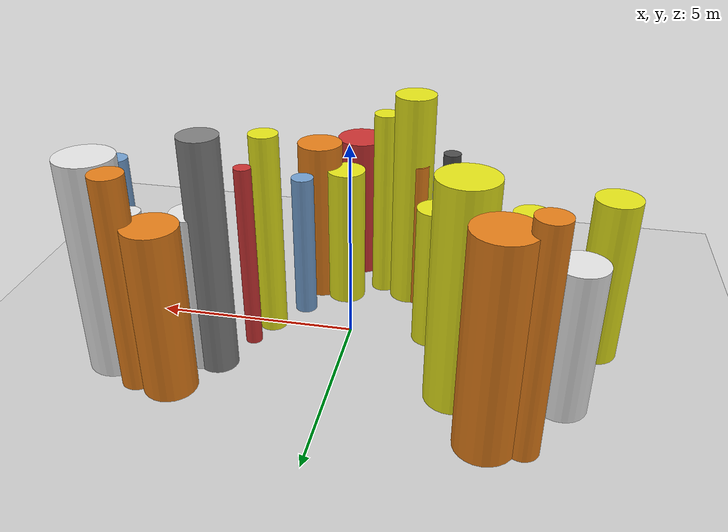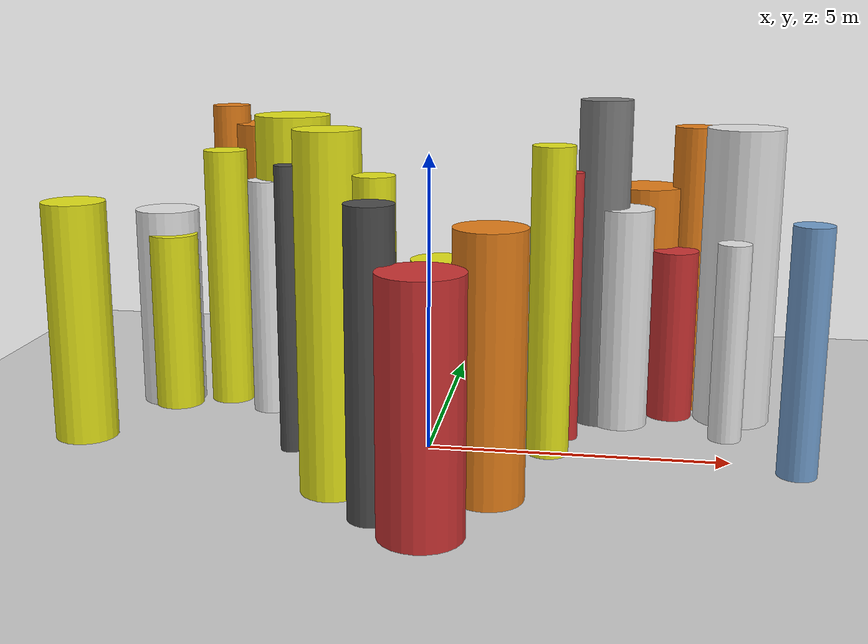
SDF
<?xml version='1.0'?>
<sdf version='1.6'>
  <world name='routeA_rl_v1__dense_recovery__rl_train__s_turn_multi_obstacle__000090'>
    <!-- Sun light -->
    <light name='sun' type='directional'>
      <cast_shadows>1</cast_shadows>
      <pose>0 0 10 0 0 0</pose>
      <diffuse>0.8 0.8 0.8 1</diffuse>
      <specular>0.2 0.2 0.2 1</specular>
      <attenuation>
        <range>1000</range>
        <constant>0.9</constant>
        <linear>0.01</linear>
        <quadratic>0.001</quadratic>
      </attenuation>
      <direction>-0.5 0.1 -0.9</direction>
    </light>

    <!-- Ground plane -->
    <model name='ground_plane'>
      <static>1</static>
      <link name='link'>
        <collision name='collision'>
          <geometry>
            <plane>
              <normal>0 0 1</normal>
              <size>100 100</size>
            </plane>
          </geometry>
          <surface>
            <contact>
              <collide_bitmask>65535</collide_bitmask>
              <ode/>
            </contact>
            <friction>
              <ode>
                <mu>100</mu>
                <mu2>50</mu2>
              </ode>
              <torsional><ode/></torsional>
            </friction>
            <bounce/>
          </surface>
          <max_contacts>10</max_contacts>
        </collision>
        <visual name='visual'>
          <cast_shadows>0</cast_shadows>
          <geometry>
            <plane>
              <normal>0 0 1</normal>
              <size>100 100</size>
            </plane>
          </geometry>
          <material>
            <script>
              <uri>file://media/materials/scripts/gazebo.material</uri>
              <n>Gazebo/Grey</n>
            </script>
          </material>
        </visual>
      </link>
    </model>

    <!-- Environment -->
    <magnetic_field>6e-06 2.3e-05 -4.2e-05</magnetic_field>
    <atmosphere type='adiabatic'/>
    <physics name='default_physics' default='0' type='ode'>
      <gravity>0 0 -9.8</gravity>
      <max_step_size>0.004</max_step_size>
      <real_time_factor>1</real_time_factor>
      <real_time_update_rate>250</real_time_update_rate>
    </physics>
    <scene>
      <ambient>0.4 0.4 0.4 1</ambient>
      <background>0.7 0.7 0.7 1</background>
      <shadows>1</shadows>
    </scene>
    <wind/>
    <spherical_coordinates>
      <surface_model>EARTH_WGS84</surface_model>
      <latitude_deg>0</latitude_deg>
      <longitude_deg>0</longitude_deg>
      <elevation>0</elevation>
      <heading_deg>0</heading_deg>
    </spherical_coordinates>

    <!-- ============ OBSTACLES (28) ============ -->
    <model name='s_turn_obs_0'>
      <static>1</static>
      <link name='link'>
        <visual name='visual'>
          <geometry>
            <cylinder>
              <radius>0.5389</radius>
              <length>4.1242</length>
            </cylinder>
          </geometry>
          <material>
            <script>
              <n>Gazebo/Yellow</n>
              <uri>file://media/materials/scripts/gazebo.material</uri>
            </script>
            <ambient>0.9 0.9 0.1 1</ambient>
          </material>
        </visual>
        <collision name='collision'>
          <geometry>
            <cylinder>
              <radius>0.5389</radius>
              <length>4.1242</length>
            </cylinder>
          </geometry>
          <max_contacts>10</max_contacts>
          <surface>
            <contact><ode/></contact>
            <bounce/>
            <friction>
              <ode><mu>1</mu><mu2>1</mu2></ode>
              <torsional><ode/></torsional>
            </friction>
          </surface>
        </collision>
      </link>
      <pose>-6.0000 -0.2772 2.0621 0 0 0.0000</pose>
    </model>

    <model name='s_turn_obs_1'>
      <static>1</static>
      <link name='link'>
        <visual name='visual'>
          <geometry>
            <cylinder>
              <radius>0.5803</radius>
              <length>3.6479</length>
            </cylinder>
          </geometry>
          <material>
            <script>
              <n>Gazebo/White</n>
              <uri>file://media/materials/scripts/gazebo.material</uri>
            </script>
            <ambient>0.9 0.9 0.9 1</ambient>
          </material>
        </visual>
        <collision name='collision'>
          <geometry>
            <cylinder>
              <radius>0.5803</radius>
              <length>3.6479</length>
            </cylinder>
          </geometry>
          <max_contacts>10</max_contacts>
          <surface>
            <contact><ode/></contact>
            <bounce/>
            <friction>
              <ode><mu>1</mu><mu2>1</mu2></ode>
              <torsional><ode/></torsional>
            </friction>
          </surface>
        </collision>
      </link>
      <pose>-5.2000 1.9835 1.8240 0 0 0.0000</pose>
    </model>

    <model name='s_turn_obs_2'>
      <static>1</static>
      <link name='link'>
        <visual name='visual'>
          <geometry>
            <cylinder>
              <radius>0.3598</radius>
              <length>5.4306</length>
            </cylinder>
          </geometry>
          <material>
            <script>
              <n>Gazebo/Orange</n>
              <uri>file://media/materials/scripts/gazebo.material</uri>
            </script>
            <ambient>0.9 0.5 0.1 1</ambient>
          </material>
        </visual>
        <collision name='collision'>
          <geometry>
            <cylinder>
              <radius>0.3598</radius>
              <length>5.4306</length>
            </cylinder>
          </geometry>
          <max_contacts>10</max_contacts>
          <surface>
            <contact><ode/></contact>
            <bounce/>
            <friction>
              <ode><mu>1</mu><mu2>1</mu2></ode>
              <torsional><ode/></torsional>
            </friction>
          </surface>
        </collision>
      </link>
      <pose>-4.4000 3.6009 2.7153 0 0 0.0000</pose>
    </model>

    <model name='s_turn_obs_3'>
      <static>1</static>
      <link name='link'>
        <visual name='visual'>
          <geometry>
            <cylinder>
              <radius>0.6853</radius>
              <length>5.0985</length>
            </cylinder>
          </geometry>
          <material>
            <script>
              <n>Gazebo/Orange</n>
              <uri>file://media/materials/scripts/gazebo.material</uri>
            </script>
            <ambient>0.9 0.5 0.1 1</ambient>
          </material>
        </visual>
        <collision name='collision'>
          <geometry>
            <cylinder>
              <radius>0.6853</radius>
              <length>5.0985</length>
            </cylinder>
          </geometry>
          <max_contacts>10</max_contacts>
          <surface>
            <contact><ode/></contact>
            <bounce/>
            <friction>
              <ode><mu>1</mu><mu2>1</mu2></ode>
              <torsional><ode/></torsional>
            </friction>
          </surface>
        </collision>
      </link>
      <pose>-3.6000 3.5733 2.5492 0 0 0.0000</pose>
    </model>

    <model name='s_turn_obs_4'>
      <static>1</static>
      <link name='link'>
        <visual name='visual'>
          <geometry>
            <cylinder>
              <radius>0.6810</radius>
              <length>5.3983</length>
            </cylinder>
          </geometry>
          <material>
            <script>
              <n>Gazebo/Yellow</n>
              <uri>file://media/materials/scripts/gazebo.material</uri>
            </script>
            <ambient>0.9 0.9 0.1 1</ambient>
          </material>
        </visual>
        <collision name='collision'>
          <geometry>
            <cylinder>
              <radius>0.6810</radius>
              <length>5.3983</length>
            </cylinder>
          </geometry>
          <max_contacts>10</max_contacts>
          <surface>
            <contact><ode/></contact>
            <bounce/>
            <friction>
              <ode><mu>1</mu><mu2>1</mu2></ode>
              <torsional><ode/></torsional>
            </friction>
          </surface>
        </collision>
      </link>
      <pose>-2.8000 2.1031 2.6991 0 0 0.0000</pose>
    </model>

    <model name='s_turn_obs_5'>
      <static>1</static>
      <link name='link'>
        <visual name='visual'>
          <geometry>
            <cylinder>
              <radius>0.4511</radius>
              <length>3.5819</length>
            </cylinder>
          </geometry>
          <material>
            <script>
              <n>Gazebo/Yellow</n>
              <uri>file://media/materials/scripts/gazebo.material</uri>
            </script>
            <ambient>0.9 0.9 0.1 1</ambient>
          </material>
        </visual>
        <collision name='collision'>
          <geometry>
            <cylinder>
              <radius>0.4511</radius>
              <length>3.5819</length>
            </cylinder>
          </geometry>
          <max_contacts>10</max_contacts>
          <surface>
            <contact><ode/></contact>
            <bounce/>
            <friction>
              <ode><mu>1</mu><mu2>1</mu2></ode>
              <torsional><ode/></torsional>
            </friction>
          </surface>
        </collision>
      </link>
      <pose>-2.0000 -0.1186 1.7909 0 0 0.0000</pose>
    </model>

    <model name='s_turn_obs_6'>
      <static>1</static>
      <link name='link'>
        <visual name='visual'>
          <geometry>
            <cylinder>
              <radius>0.5086</radius>
              <length>5.5882</length>
            </cylinder>
          </geometry>
          <material>
            <script>
              <n>Gazebo/Yellow</n>
              <uri>file://media/materials/scripts/gazebo.material</uri>
            </script>
            <ambient>0.9 0.9 0.1 1</ambient>
          </material>
        </visual>
        <collision name='collision'>
          <geometry>
            <cylinder>
              <radius>0.5086</radius>
              <length>5.5882</length>
            </cylinder>
          </geometry>
          <max_contacts>10</max_contacts>
          <surface>
            <contact><ode/></contact>
            <bounce/>
            <friction>
              <ode><mu>1</mu><mu2>1</mu2></ode>
              <torsional><ode/></torsional>
            </friction>
          </surface>
        </collision>
      </link>
      <pose>-1.2000 -2.0765 2.7941 0 0 0.0000</pose>
    </model>

    <model name='s_turn_obs_7'>
      <static>1</static>
      <link name='link'>
        <visual name='visual'>
          <geometry>
            <cylinder>
              <radius>0.3691</radius>
              <length>4.6695</length>
            </cylinder>
          </geometry>
          <material>
            <script>
              <n>Gazebo/DarkGrey</n>
              <uri>file://media/materials/scripts/gazebo.material</uri>
            </script>
            <ambient>0.3 0.3 0.3 1</ambient>
          </material>
        </visual>
        <collision name='collision'>
          <geometry>
            <cylinder>
              <radius>0.3691</radius>
              <length>4.6695</length>
            </cylinder>
          </geometry>
          <max_contacts>10</max_contacts>
          <surface>
            <contact><ode/></contact>
            <bounce/>
            <friction>
              <ode><mu>1</mu><mu2>1</mu2></ode>
              <torsional><ode/></torsional>
            </friction>
          </surface>
        </collision>
      </link>
      <pose>-0.4000 -3.0239 2.3347 0 0 0.0000</pose>
    </model>

    <model name='s_turn_obs_8'>
      <static>1</static>
      <link name='link'>
        <visual name='visual'>
          <geometry>
            <cylinder>
              <radius>0.6441</radius>
              <length>3.8398</length>
            </cylinder>
          </geometry>
          <material>
            <script>
              <n>Gazebo/Red</n>
              <uri>file://media/materials/scripts/gazebo.material</uri>
            </script>
            <ambient>0.8 0.2 0.2 1</ambient>
          </material>
        </visual>
        <collision name='collision'>
          <geometry>
            <cylinder>
              <radius>0.6441</radius>
              <length>3.8398</length>
            </cylinder>
          </geometry>
          <max_contacts>10</max_contacts>
          <surface>
            <contact><ode/></contact>
            <bounce/>
            <friction>
              <ode><mu>1</mu><mu2>1</mu2></ode>
              <torsional><ode/></torsional>
            </friction>
          </surface>
        </collision>
      </link>
      <pose>0.4000 -3.5137 1.9199 0 0 0.0000</pose>
    </model>

    <model name='s_turn_obs_9'>
      <static>1</static>
      <link name='link'>
        <visual name='visual'>
          <geometry>
            <cylinder>
              <radius>0.5702</radius>
              <length>4.1988</length>
            </cylinder>
          </geometry>
          <material>
            <script>
              <n>Gazebo/Orange</n>
              <uri>file://media/materials/scripts/gazebo.material</uri>
            </script>
            <ambient>0.9 0.5 0.1 1</ambient>
          </material>
        </visual>
        <collision name='collision'>
          <geometry>
            <cylinder>
              <radius>0.5702</radius>
              <length>4.1988</length>
            </cylinder>
          </geometry>
          <max_contacts>10</max_contacts>
          <surface>
            <contact><ode/></contact>
            <bounce/>
            <friction>
              <ode><mu>1</mu><mu2>1</mu2></ode>
              <torsional><ode/></torsional>
            </friction>
          </surface>
        </collision>
      </link>
      <pose>1.2000 -2.0121 2.0994 0 0 0.0000</pose>
    </model>

    <model name='s_turn_obs_10'>
      <static>1</static>
      <link name='link'>
        <visual name='visual'>
          <geometry>
            <cylinder>
              <radius>0.3525</radius>
              <length>5.1616</length>
            </cylinder>
          </geometry>
          <material>
            <script>
              <n>Gazebo/Yellow</n>
              <uri>file://media/materials/scripts/gazebo.material</uri>
            </script>
            <ambient>0.9 0.9 0.1 1</ambient>
          </material>
        </visual>
        <collision name='collision'>
          <geometry>
            <cylinder>
              <radius>0.3525</radius>
              <length>5.1616</length>
            </cylinder>
          </geometry>
          <max_contacts>10</max_contacts>
          <surface>
            <contact><ode/></contact>
            <bounce/>
            <friction>
              <ode><mu>1</mu><mu2>1</mu2></ode>
              <torsional><ode/></torsional>
            </friction>
          </surface>
        </collision>
      </link>
      <pose>2.0000 0.0744 2.5808 0 0 0.0000</pose>
    </model>

    <model name='s_turn_obs_11'>
      <static>1</static>
      <link name='link'>
        <visual name='visual'>
          <geometry>
            <cylinder>
              <radius>0.4551</radius>
              <length>5.7502</length>
            </cylinder>
          </geometry>
          <material>
            <script>
              <n>Gazebo/Grey</n>
              <uri>file://media/materials/scripts/gazebo.material</uri>
            </script>
            <ambient>0.5 0.5 0.5 1</ambient>
          </material>
        </visual>
        <collision name='collision'>
          <geometry>
            <cylinder>
              <radius>0.4551</radius>
              <length>5.7502</length>
            </cylinder>
          </geometry>
          <max_contacts>10</max_contacts>
          <surface>
            <contact><ode/></contact>
            <bounce/>
            <friction>
              <ode><mu>1</mu><mu2>1</mu2></ode>
              <torsional><ode/></torsional>
            </friction>
          </surface>
        </collision>
      </link>
      <pose>2.8000 1.9269 2.8751 0 0 0.0000</pose>
    </model>

    <model name='s_turn_obs_12'>
      <static>1</static>
      <link name='link'>
        <visual name='visual'>
          <geometry>
            <cylinder>
              <radius>0.6271</radius>
              <length>4.1241</length>
            </cylinder>
          </geometry>
          <material>
            <script>
              <n>Gazebo/Orange</n>
              <uri>file://media/materials/scripts/gazebo.material</uri>
            </script>
            <ambient>0.9 0.5 0.1 1</ambient>
          </material>
        </visual>
        <collision name='collision'>
          <geometry>
            <cylinder>
              <radius>0.6271</radius>
              <length>4.1241</length>
            </cylinder>
          </geometry>
          <max_contacts>10</max_contacts>
          <surface>
            <contact><ode/></contact>
            <bounce/>
            <friction>
              <ode><mu>1</mu><mu2>1</mu2></ode>
              <torsional><ode/></torsional>
            </friction>
          </surface>
        </collision>
      </link>
      <pose>3.6000 3.0103 2.0621 0 0 0.0000</pose>
    </model>

    <model name='s_turn_obs_13'>
      <static>1</static>
      <link name='link'>
        <visual name='visual'>
          <geometry>
            <cylinder>
              <radius>0.3814</radius>
              <length>5.2100</length>
            </cylinder>
          </geometry>
          <material>
            <script>
              <n>Gazebo/Orange</n>
              <uri>file://media/materials/scripts/gazebo.material</uri>
            </script>
            <ambient>0.9 0.5 0.1 1</ambient>
          </material>
        </visual>
        <collision name='collision'>
          <geometry>
            <cylinder>
              <radius>0.3814</radius>
              <length>5.2100</length>
            </cylinder>
          </geometry>
          <max_contacts>10</max_contacts>
          <surface>
            <contact><ode/></contact>
            <bounce/>
            <friction>
              <ode><mu>1</mu><mu2>1</mu2></ode>
              <torsional><ode/></torsional>
            </friction>
          </surface>
        </collision>
      </link>
      <pose>4.4000 2.9901 2.6050 0 0 0.0000</pose>
    </model>

    <model name='s_turn_obs_14'>
      <static>1</static>
      <link name='link'>
        <visual name='visual'>
          <geometry>
            <cylinder>
              <radius>0.6725</radius>
              <length>5.2603</length>
            </cylinder>
          </geometry>
          <material>
            <script>
              <n>Gazebo/White</n>
              <uri>file://media/materials/scripts/gazebo.material</uri>
            </script>
            <ambient>0.9 0.9 0.9 1</ambient>
          </material>
        </visual>
        <collision name='collision'>
          <geometry>
            <cylinder>
              <radius>0.6725</radius>
              <length>5.2603</length>
            </cylinder>
          </geometry>
          <max_contacts>10</max_contacts>
          <surface>
            <contact><ode/></contact>
            <bounce/>
            <friction>
              <ode><mu>1</mu><mu2>1</mu2></ode>
              <torsional><ode/></torsional>
            </friction>
          </surface>
        </collision>
      </link>
      <pose>5.2000 2.3416 2.6302 0 0 0.0000</pose>
    </model>

    <model name='s_turn_obs_15'>
      <static>1</static>
      <link name='link'>
        <visual name='visual'>
          <geometry>
            <cylinder>
              <radius>0.3215</radius>
              <length>4.0605</length>
            </cylinder>
          </geometry>
          <material>
            <script>
              <n>Gazebo/Blue</n>
              <uri>file://media/materials/scripts/gazebo.material</uri>
            </script>
            <ambient>0.447 0.624 0.812 1</ambient>
          </material>
        </visual>
        <collision name='collision'>
          <geometry>
            <cylinder>
              <radius>0.3215</radius>
              <length>4.0605</length>
            </cylinder>
          </geometry>
          <max_contacts>10</max_contacts>
          <surface>
            <contact><ode/></contact>
            <bounce/>
            <friction>
              <ode><mu>1</mu><mu2>1</mu2></ode>
              <torsional><ode/></torsional>
            </friction>
          </surface>
        </collision>
      </link>
      <pose>6.0000 -0.3500 2.0303 0 0 0.0000</pose>
    </model>

    <model name='s_turn_obs2_0'>
      <static>1</static>
      <link name='link'>
        <visual name='visual'>
          <geometry>
            <cylinder>
              <radius>0.4470</radius>
              <length>3.2338</length>
            </cylinder>
          </geometry>
          <material>
            <script>
              <n>Gazebo/Yellow</n>
              <uri>file://media/materials/scripts/gazebo.material</uri>
            </script>
            <ambient>0.9 0.9 0.1 1</ambient>
          </material>
        </visual>
        <collision name='collision'>
          <geometry>
            <cylinder>
              <radius>0.4470</radius>
              <length>3.2338</length>
            </cylinder>
          </geometry>
          <max_contacts>10</max_contacts>
          <surface>
            <contact><ode/></contact>
            <bounce/>
            <friction>
              <ode><mu>1</mu><mu2>1</mu2></ode>
              <torsional><ode/></torsional>
            </friction>
          </surface>
        </collision>
      </link>
      <pose>-5.0000 1.6818 1.6169 0 0 0.0000</pose>
    </model>

    <model name='s_turn_obs2_1'>
      <static>1</static>
      <link name='link'>
        <visual name='visual'>
          <geometry>
            <cylinder>
              <radius>0.3954</radius>
              <length>4.7394</length>
            </cylinder>
          </geometry>
          <material>
            <script>
              <n>Gazebo/Yellow</n>
              <uri>file://media/materials/scripts/gazebo.material</uri>
            </script>
            <ambient>0.9 0.9 0.1 1</ambient>
          </material>
        </visual>
        <collision name='collision'>
          <geometry>
            <cylinder>
              <radius>0.3954</radius>
              <length>4.7394</length>
            </cylinder>
          </geometry>
          <max_contacts>10</max_contacts>
          <surface>
            <contact><ode/></contact>
            <bounce/>
            <friction>
              <ode><mu>1</mu><mu2>1</mu2></ode>
              <torsional><ode/></torsional>
            </friction>
          </surface>
        </collision>
      </link>
      <pose>-4.0909 2.1184 2.3697 0 0 0.0000</pose>
    </model>

    <model name='s_turn_obs2_2'>
      <static>1</static>
      <link name='link'>
        <visual name='visual'>
          <geometry>
            <cylinder>
              <radius>0.3436</radius>
              <length>4.2724</length>
            </cylinder>
          </geometry>
          <material>
            <script>
              <n>Gazebo/White</n>
              <uri>file://media/materials/scripts/gazebo.material</uri>
            </script>
            <ambient>0.9 0.9 0.9 1</ambient>
          </material>
        </visual>
        <collision name='collision'>
          <geometry>
            <cylinder>
              <radius>0.3436</radius>
              <length>4.2724</length>
            </cylinder>
          </geometry>
          <max_contacts>10</max_contacts>
          <surface>
            <contact><ode/></contact>
            <bounce/>
            <friction>
              <ode><mu>1</mu><mu2>1</mu2></ode>
              <torsional><ode/></torsional>
            </friction>
          </surface>
        </collision>
      </link>
      <pose>-3.1818 1.6350 2.1362 0 0 0.0000</pose>
    </model>

    <model name='s_turn_obs2_3'>
      <static>1</static>
      <link name='link'>
        <visual name='visual'>
          <geometry>
            <cylinder>
              <radius>0.2018</radius>
              <length>4.8243</length>
            </cylinder>
          </geometry>
          <material>
            <script>
              <n>Gazebo/DarkGrey</n>
              <uri>file://media/materials/scripts/gazebo.material</uri>
            </script>
            <ambient>0.3 0.3 0.3 1</ambient>
          </material>
        </visual>
        <collision name='collision'>
          <geometry>
            <cylinder>
              <radius>0.2018</radius>
              <length>4.8243</length>
            </cylinder>
          </geometry>
          <max_contacts>10</max_contacts>
          <surface>
            <contact><ode/></contact>
            <bounce/>
            <friction>
              <ode><mu>1</mu><mu2>1</mu2></ode>
              <torsional><ode/></torsional>
            </friction>
          </surface>
        </collision>
      </link>
      <pose>-2.2727 -0.4075 2.4122 0 0 0.0000</pose>
    </model>

    <model name='s_turn_obs2_4'>
      <static>1</static>
      <link name='link'>
        <visual name='visual'>
          <geometry>
            <cylinder>
              <radius>0.2670</radius>
              <length>3.8810</length>
            </cylinder>
          </geometry>
          <material>
            <script>
              <n>Gazebo/Orange</n>
              <uri>file://media/materials/scripts/gazebo.material</uri>
            </script>
            <ambient>0.9 0.5 0.1 1</ambient>
          </material>
        </visual>
        <collision name='collision'>
          <geometry>
            <cylinder>
              <radius>0.2670</radius>
              <length>3.8810</length>
            </cylinder>
          </geometry>
          <max_contacts>10</max_contacts>
          <surface>
            <contact><ode/></contact>
            <bounce/>
            <friction>
              <ode><mu>1</mu><mu2>1</mu2></ode>
              <torsional><ode/></torsional>
            </friction>
          </surface>
        </collision>
      </link>
      <pose>-1.3636 -1.8449 1.9405 0 0 0.0000</pose>
    </model>

    <model name='s_turn_obs2_5'>
      <static>1</static>
      <link name='link'>
        <visual name='visual'>
          <geometry>
            <cylinder>
              <radius>0.3155</radius>
              <length>4.9665</length>
            </cylinder>
          </geometry>
          <material>
            <script>
              <n>Gazebo/Yellow</n>
              <uri>file://media/materials/scripts/gazebo.material</uri>
            </script>
            <ambient>0.9 0.9 0.1 1</ambient>
          </material>
        </visual>
        <collision name='collision'>
          <geometry>
            <cylinder>
              <radius>0.3155</radius>
              <length>4.9665</length>
            </cylinder>
          </geometry>
          <max_contacts>10</max_contacts>
          <surface>
            <contact><ode/></contact>
            <bounce/>
            <friction>
              <ode><mu>1</mu><mu2>1</mu2></ode>
              <torsional><ode/></torsional>
            </friction>
          </surface>
        </collision>
      </link>
      <pose>-0.4545 -2.3469 2.4832 0 0 0.0000</pose>
    </model>

    <model name='s_turn_obs2_6'>
      <static>1</static>
      <link name='link'>
        <visual name='visual'>
          <geometry>
            <cylinder>
              <radius>0.4835</radius>
              <length>3.6395</length>
            </cylinder>
          </geometry>
          <material>
            <script>
              <n>Gazebo/Yellow</n>
              <uri>file://media/materials/scripts/gazebo.material</uri>
            </script>
            <ambient>0.9 0.9 0.1 1</ambient>
          </material>
        </visual>
        <collision name='collision'>
          <geometry>
            <cylinder>
              <radius>0.4835</radius>
              <length>3.6395</length>
            </cylinder>
          </geometry>
          <max_contacts>10</max_contacts>
          <surface>
            <contact><ode/></contact>
            <bounce/>
            <friction>
              <ode><mu>1</mu><mu2>1</mu2></ode>
              <torsional><ode/></torsional>
            </friction>
          </surface>
        </collision>
      </link>
      <pose>0.4545 -1.7306 1.8198 0 0 0.0000</pose>
    </model>

    <model name='s_turn_obs2_7'>
      <static>1</static>
      <link name='link'>
        <visual name='visual'>
          <geometry>
            <cylinder>
              <radius>0.2779</radius>
              <length>3.7393</length>
            </cylinder>
          </geometry>
          <material>
            <script>
              <n>Gazebo/Blue</n>
              <uri>file://media/materials/scripts/gazebo.material</uri>
            </script>
            <ambient>0.447 0.624 0.812 1</ambient>
          </material>
        </visual>
        <collision name='collision'>
          <geometry>
            <cylinder>
              <radius>0.2779</radius>
              <length>3.7393</length>
            </cylinder>
          </geometry>
          <max_contacts>10</max_contacts>
          <surface>
            <contact><ode/></contact>
            <bounce/>
            <friction>
              <ode><mu>1</mu><mu2>1</mu2></ode>
              <torsional><ode/></torsional>
            </friction>
          </surface>
        </collision>
      </link>
      <pose>1.3636 -0.8281 1.8697 0 0 0.0000</pose>
    </model>

    <model name='s_turn_obs2_8'>
      <static>1</static>
      <link name='link'>
        <visual name='visual'>
          <geometry>
            <cylinder>
              <radius>0.2039</radius>
              <length>4.6317</length>
            </cylinder>
          </geometry>
          <material>
            <script>
              <n>Gazebo/Red</n>
              <uri>file://media/materials/scripts/gazebo.material</uri>
            </script>
            <ambient>0.8 0.2 0.2 1</ambient>
          </material>
        </visual>
        <collision name='collision'>
          <geometry>
            <cylinder>
              <radius>0.2039</radius>
              <length>4.6317</length>
            </cylinder>
          </geometry>
          <max_contacts>10</max_contacts>
          <surface>
            <contact><ode/></contact>
            <bounce/>
            <friction>
              <ode><mu>1</mu><mu2>1</mu2></ode>
              <torsional><ode/></torsional>
            </friction>
          </surface>
        </collision>
      </link>
      <pose>2.2727 0.8667 2.3158 0 0 0.0000</pose>
    </model>

    <model name='s_turn_obs2_9'>
      <static>1</static>
      <link name='link'>
        <visual name='visual'>
          <geometry>
            <cylinder>
              <radius>0.4999</radius>
              <length>3.8991</length>
            </cylinder>
          </geometry>
          <material>
            <script>
              <n>Gazebo/White</n>
              <uri>file://media/materials/scripts/gazebo.material</uri>
            </script>
            <ambient>0.9 0.9 0.9 1</ambient>
          </material>
        </visual>
        <collision name='collision'>
          <geometry>
            <cylinder>
              <radius>0.4999</radius>
              <length>3.8991</length>
            </cylinder>
          </geometry>
          <max_contacts>10</max_contacts>
          <surface>
            <contact><ode/></contact>
            <bounce/>
            <friction>
              <ode><mu>1</mu><mu2>1</mu2></ode>
              <torsional><ode/></torsional>
            </friction>
          </surface>
        </collision>
      </link>
      <pose>3.1818 1.8127 1.9495 0 0 0.0000</pose>
    </model>

    <model name='s_turn_obs2_10'>
      <static>1</static>
      <link name='link'>
        <visual name='visual'>
          <geometry>
            <cylinder>
              <radius>0.4094</radius>
              <length>3.0685</length>
            </cylinder>
          </geometry>
          <material>
            <script>
              <n>Gazebo/Red</n>
              <uri>file://media/materials/scripts/gazebo.material</uri>
            </script>
            <ambient>0.8 0.2 0.2 1</ambient>
          </material>
        </visual>
        <collision name='collision'>
          <geometry>
            <cylinder>
              <radius>0.4094</radius>
              <length>3.0685</length>
            </cylinder>
          </geometry>
          <max_contacts>10</max_contacts>
          <surface>
            <contact><ode/></contact>
            <bounce/>
            <friction>
              <ode><mu>1</mu><mu2>1</mu2></ode>
              <torsional><ode/></torsional>
            </friction>
          </surface>
        </collision>
      </link>
      <pose>4.0909 2.3548 1.5343 0 0 0.0000</pose>
    </model>

    <model name='s_turn_obs2_11'>
      <static>1</static>
      <link name='link'>
        <visual name='visual'>
          <geometry>
            <cylinder>
              <radius>0.2840</radius>
              <length>3.4432</length>
            </cylinder>
          </geometry>
          <material>
            <script>
              <n>Gazebo/White</n>
              <uri>file://media/materials/scripts/gazebo.material</uri>
            </script>
            <ambient>0.9 0.9 0.9 1</ambient>
          </material>
        </visual>
        <collision name='collision'>
          <geometry>
            <cylinder>
              <radius>0.2840</radius>
              <length>3.4432</length>
            </cylinder>
          </geometry>
          <max_contacts>10</max_contacts>
          <surface>
            <contact><ode/></contact>
            <bounce/>
            <friction>
              <ode><mu>1</mu><mu2>1</mu2></ode>
              <torsional><ode/></torsional>
            </friction>
          </surface>
        </collision>
      </link>
      <pose>5.0000 1.1985 1.7216 0 0 0.0000</pose>
    </model>

    <!-- GUI camera -->
    <gui fullscreen='0'>
      <camera name='user_camera'>
        <pose>-15 0 18 0 0.85 0.15</pose>
        <view_controller>orbit</view_controller>
        <projection_type>perspective</projection_type>
      </camera>
    </gui>
  </world>
</sdf>
